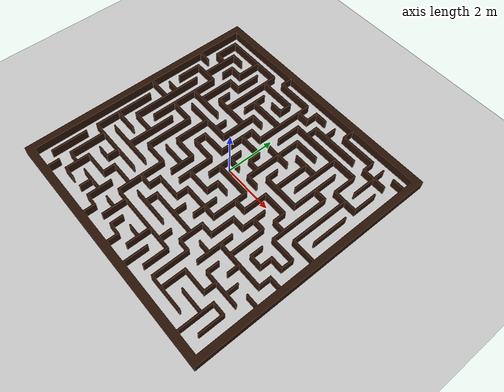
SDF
<sdf version='1.10'>
  <world name='empty'>
    <physics name='1ms' type='ignored'>
      <max_step_size>0.002</max_step_size>
      <real_time_factor>500</real_time_factor>
      <real_time_update_rate>1000</real_time_update_rate>
    </physics>
    <plugin name='gz::sim::systems::Physics' filename='gz-sim-physics-system'/>
    <plugin name='gz::sim::systems::UserCommands' filename='gz-sim-user-commands-system'/>
    <plugin name='gz::sim::systems::SceneBroadcaster' filename='gz-sim-scene-broadcaster-system'/>
    <plugin name='gz::sim::systems::Contact' filename='gz-sim-contact-system'/>
    <gravity>0 0 -9.8000000000000007</gravity>
    <magnetic_field>5.5644999999999998e-06 2.2875799999999999e-05 -4.2388400000000002e-05</magnetic_field>
    <atmosphere type='adiabatic'/>
    <scene>
      <ambient>0.400000006 0.400000006 0.400000006 1</ambient>
      <background>0.699999988 0.699999988 0.699999988 1</background>
      <shadows>true</shadows>
    </scene>
    <model name='ground_plane'>
      <static>true</static>
      <link name='link'>
        <collision name='collision'>
          <geometry>
            <plane>
              <normal>0 0 1</normal>
              <size>100 100</size>
            </plane>
          </geometry>
          <surface>
            <friction>
              <ode/>
            </friction>
            <bounce/>
            <contact/>
          </surface>
        </collision>
        <visual name='visual'>
          <geometry>
            <plane>
              <normal>0 0 1</normal>
              <size>100 100</size>
            </plane>
          </geometry>
          <material>
            <ambient>0.800000012 0.800000012 0.800000012 1</ambient>
            <diffuse>0.800000012 0.800000012 0.800000012 1</diffuse>
            <specular>0.800000012 0.800000012 0.800000012 1</specular>
          </material>
        </visual>
        <pose>0 0 0 0 0 0</pose>
        <inertial>
          <pose>0 0 0 0 0 0</pose>
          <mass>1</mass>
          <inertia>
            <ixx>1</ixx>
            <ixy>0</ixy>
            <ixz>0</ixz>
            <iyy>1</iyy>
            <iyz>0</iyz>
            <izz>1</izz>
          </inertia>
        </inertial>
        <enable_wind>false</enable_wind>
      </link>
      <pose>0 0 0 0 0 0</pose>
      <self_collide>false</self_collide>
    </model>
    <model name='maze'>
      <link name='link'>
        <visual name='visual'>
          <geometry>
            <mesh>
              <uri>file:///home/martin/ros2_ws/src/mini_pi_description/worlds/maze.dae</uri>
            </mesh>
          </geometry>
        </visual>
        <collision name='collision'>
          <geometry>
            <mesh>
              <uri>file:///home/martin/ros2_ws/src/mini_pi_description/worlds/maze.dae</uri>
            </mesh>
          </geometry>
        </collision>
        <pose>0 0 0 0 0 0</pose>
        <inertial>
          <pose>0 0 0 0 0 0</pose>
          <mass>1</mass>
          <inertia>
            <ixx>1</ixx>
            <ixy>0</ixy>
            <ixz>0</ixz>
            <iyy>1</iyy>
            <iyz>0</iyz>
            <izz>1</izz>
          </inertia>
        </inertial>
        <enable_wind>false</enable_wind>
      </link>
      <pose>-0.21627341125785915 -0.25938615054569231 -0.078587081356083291 -3.7541011346832302e-06 -3.858758658887998e-06 4.0506514349398577e-10</pose>
      <static>true</static>
      <self_collide>false</self_collide>
    </model>
    <light name='sun' type='directional'>
      <pose>0 0 10 0 0 0</pose>
      <cast_shadows>true</cast_shadows>
      <intensity>1</intensity>
      <direction>-0.5 0.10000000000000001 -0.90000000000000002</direction>
      <diffuse>0.800000012 0.800000012 0.800000012 1</diffuse>
      <specular>0.200000003 0.200000003 0.200000003 1</specular>
      <attenuation>
        <range>1000</range>
        <linear>0.0099999997764825821</linear>
        <constant>0.89999997615814209</constant>
        <quadratic>0.0010000000474974513</quadratic>
      </attenuation>
      <spot>
        <inner_angle>0</inner_angle>
        <outer_angle>0</outer_angle>
        <falloff>0</falloff>
      </spot>
    </light>
  </world>
</sdf>
